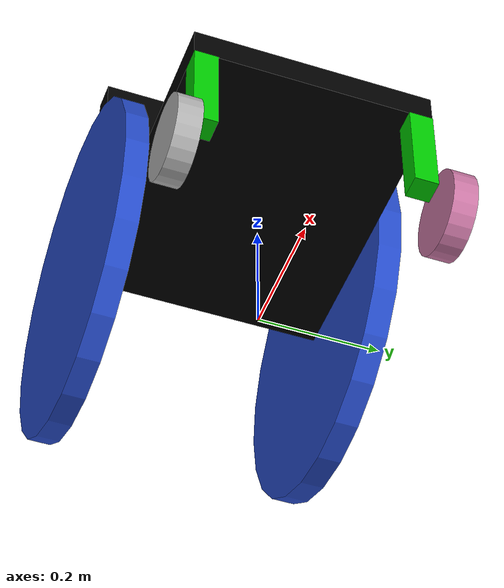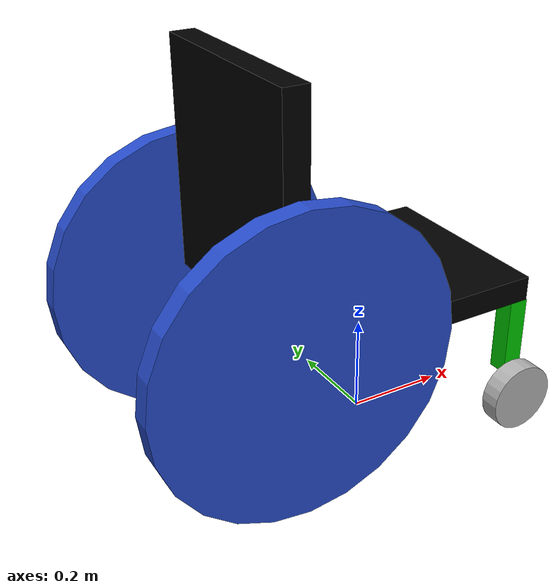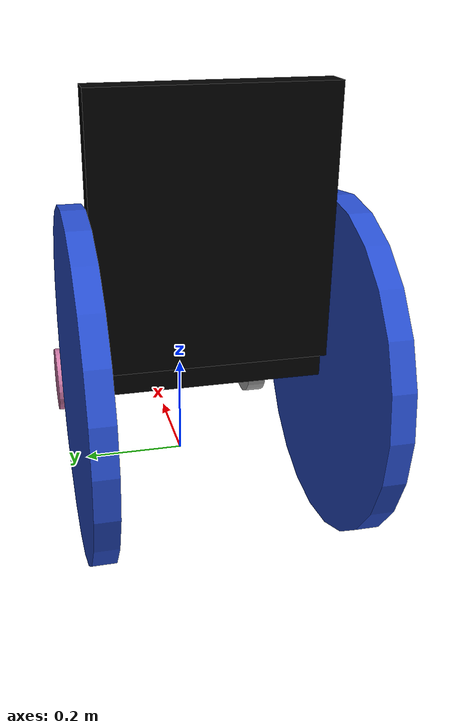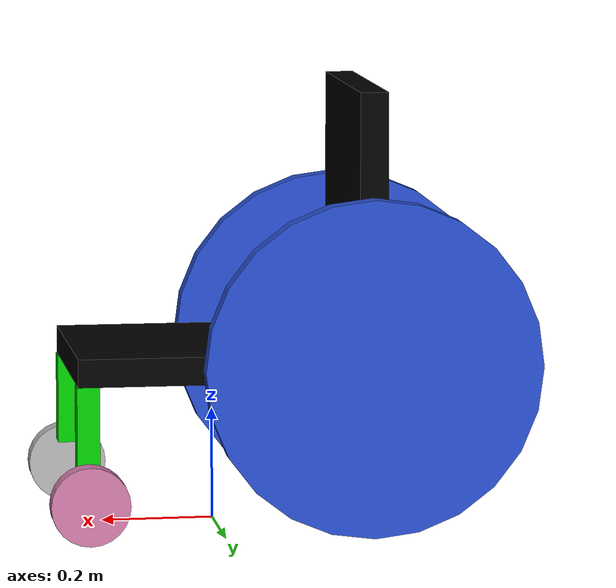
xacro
<?xml version="1.0" ?>

<robot name="m2wr" xmlns:xacro="http://www.ros.org/wiki/xacro">
  <material name="black">
    <color rgba="0.0 0.0 0.0 1.0"/>
  </material>
  <material name="blue">
    <color rgba="0.203125 0.23828125 0.28515625 1.0"/>
  </material>
  <material name="green">
    <color rgba="0.0 0.8 0.0 1.0"/>
  </material>
  <material name="grey">
    <color rgba="0.2 0.2 0.2 1.0"/>
  </material>
  <material name="orange">
    <color rgba="1.0 0.423529411765 0.0392156862745 1.0"/>
  </material>
  <material name="brown">
    <color rgba="0.870588235294 0.811764705882 0.764705882353 1.0"/>
  </material>
  <material name="red">
    <color rgba="0.80078125 0.12890625 0.1328125 1.0"/>
  </material>
  <material name="white">
    <color rgba="1.0 1.0 1.0 1.0"/>
  </material>

  <gazebo reference="base_link">
    <material>Gazebo/Orange</material>
  </gazebo>
  <gazebo reference="link_left_wheel">
    <material>Gazebo/Blue</material>
  </gazebo>
  <gazebo reference="link_right_wheel">
    <material>Gazebo/Blue</material>
  </gazebo>

    <link name="base_link">
        <visual>
            <geometry>
                <box size="0.52 0.40 0.05"/>
             </geometry>
             <origin rpy="0 0 0" xyz="0 0 0.3"/>
             <material name ="black"/>
        </visual>
        <collision name="collision_chassis">
            <geometry>
                <box size="0.52 0.40 0.05"/>
            </geometry>
            <origin rpy="0 0 0" xyz="0 0 0.3"/>
        </collision>
    </link>

  <link name ="link_back_frame">
    <collision name="collision_back_frame">
        <origin rpy = "0 1.5707 0" xyz="0 0 0"/>
        <material name ="black"/>
        <geometry>
            <box size="0.46 0.4 0.05"/>
        </geometry>
    </collision>
    <visual name="visual_back_frame">
        <origin rpy = "0 1.5707 0" xyz="0 0 0"/>
        <material name ="black"/>
        <geometry>
            <box size="0.46 0.4 0.05"/>
        </geometry>
    </visual>
  </link>

    <joint name="joint_back_frame" type="fixed">
    <origin rpy="0 0 0" xyz="-0.2625 0 0.555"/>
    <child link="link_back_frame"/>
    <parent link="base_link"/>
    <axis rpy="0 0 0" xyz="0 1 0"/>
  </joint>

  <link name="link_right_wheel">
    <collision name="link_right_wheel_collision">
      <origin rpy="0 1.5707 1.5707" xyz="0 0 0"/>
      <geometry>
        <cylinder length="0.04" radius="0.3"/>
      </geometry>
    </collision>
    <visual name="link_right_wheel_visual">
      <origin rpy="0 1.5707 1.5707" xyz="0 0 0"/>
      <geometry>
        <cylinder length="0.04" radius="0.3"/>
      </geometry>
    </visual>
  </link>

  <joint name="joint_right_wheel" type="continuous">
    <origin rpy="0 0 0" xyz="-0.26 0.22 0.3"/>
    <child link="link_right_wheel"/>
    <parent link="base_link"/>
    <axis rpy="0 0 0" xyz="0 1 0"/>
    <limit effort="10000" velocity="1000"/>
    <joint_properties damping="1.0" friction="1.0"/>
  </joint>

  <link name="link_left_wheel">
    <collision name="link_left_wheel_collision">
      <origin rpy="0 1.5707 1.5707" xyz="0 0 0"/>
      <geometry>
        <cylinder length="0.04" radius="0.3"/>
      </geometry>
    </collision>
    <visual name="link_left_wheel_visual">
      <origin rpy="0 1.5707 1.5707" xyz="0 0 0"/>
      <geometry>
        <cylinder length="0.04" radius="0.3"/>
      </geometry>
    </visual>
  </link>

  <joint name="joint_left_wheel" type="continuous">
    <origin rpy="0 0 0" xyz="-0.26 -0.22 0.3"/>
    <child link="link_left_wheel"/>
    <parent link="base_link"/>
    <axis rpy="0 0 0" xyz="0 1 0"/>
    <limit effort="10000" velocity="1000"/>
    <joint_properties damping="1.0" friction="1.0"/>
  </joint>

  <link name="link_support_right_bar">
   <collision name="collision_support_right_bar">
        <origin rpy="0 -1.5707 0" xyz="0 0 0"/>
        <material name ="green"/>
        <geometry>
            <box size="0.16 0.04 0.04"/>
        </geometry>
   </collision>
   <visual name="visual_support_right_bar">
        <origin rpy = "0 -1.5707 0" xyz="0 0 0"/>
        <material name ="green"/>
        <geometry>
            <box size="0.16 0.04 0.04"/>
        </geometry>
    </visual>
  </link>

    <joint name="joint_support_right_bar" type="fixed">
    <origin rpy="0 0 0" xyz="0.2420 0.18  0.195"/>
    <child link="link_support_right_bar"/>
    <parent link="base_link"/>
    <axis rpy="0 0 0" xyz="0 1 0"/>
  </joint>

<link name="link_support_left_bar">
   <collision name="collision_support_left_bar">
        <origin rpy="0 -1.5707 0" xyz="0 0 0"/>
        <material name ="green"/>
        <geometry>
            <box size="0.16 0.04 0.04"/>
        </geometry>
   </collision>
   <visual name="visual_support_left_bar">
        <origin rpy = "0 -1.5707 0" xyz="0 0 0"/>
        <material name ="green"/>
        <geometry>
            <box size="0.16 0.04 0.04"/>
        </geometry>
    </visual>
  </link>

    <joint name="joint_support_left_bar" type="fixed">
    <origin rpy="0 0 0" xyz="0.2420 -0.18  0.195"/>
    <child link="link_support_left_bar"/>
    <parent link="base_link"/>
    <axis rpy="0 0 0" xyz="0 1 0"/>
  </joint>

  <link name="link_support_right_wheel">
    <collision name="link_support_right_left_wheel_collision">
      <origin rpy="0 1.5707 1.5707" xyz="0 0 0"/>
      <geometry>
        <cylinder length="0.04" radius="0.07"/>
      </geometry>
    </collision>
    <visual name="link_support_right_wheel_visual">
      <origin rpy="0 1.5707 1.5707" xyz="0 0 0"/>
      <geometry>
        <cylinder length="0.04" radius="0.07"/>
      </geometry>
    </visual>
  </link>

  <joint name="joint_support_right_wheel" type="continuous">
    <origin rpy="0 0 0" xyz="0.2420 0.22 0.07"/>
    <child link="link_support_right_wheel"/>
    <parent link="base_link"/>
    <axis rpy="0 0 0" xyz="0 1 0"/>
    <limit effort="10000" velocity="1000"/>
    <joint_properties damping="1.0" friction="1.0"/>
  </joint>

  <link name="link_support_left_wheel">
    <collision name="link_support_left_wheel_collision">
      <origin rpy="0 1.5707 1.5707" xyz="0 0 0"/>
      <geometry>
        <cylinder length="0.04" radius="0.07"/>
      </geometry>
    </collision>
    <visual name="link_support_left_wheel_visual">
      <origin rpy="0 1.5707 1.5707" xyz="0 0 0"/>
      <geometry>
        <cylinder length="0.04" radius="0.07"/>
      </geometry>
    </visual>
  </link>

  <joint name="joint_support_left_wheel" type="continuous">
    <origin rpy="0 0 0" xyz="0.2420 -0.22 0.07"/>
    <child link="link_support_left_wheel"/>
    <parent link="base_link"/>
    <axis rpy="0 0 0" xyz="0 1 0"/>
    <limit effort="10000" velocity="1000"/>
    <joint_properties damping="1.0" friction="1.0"/>
  </joint>

</robot>
